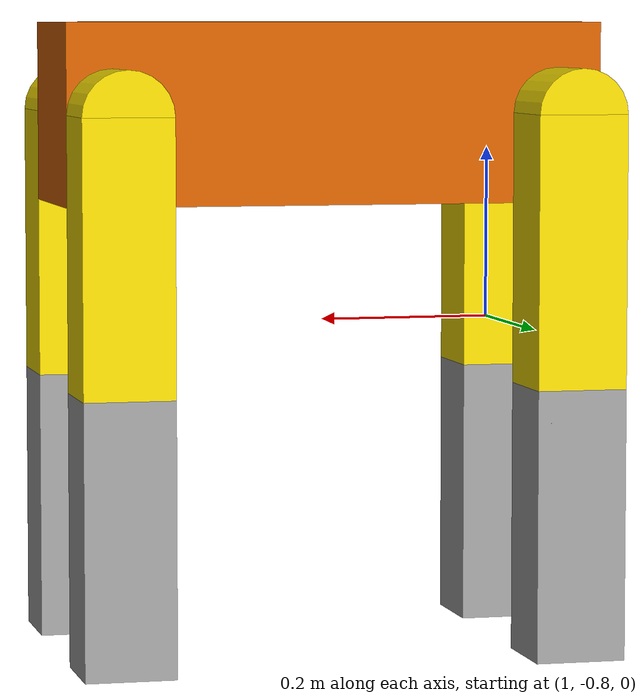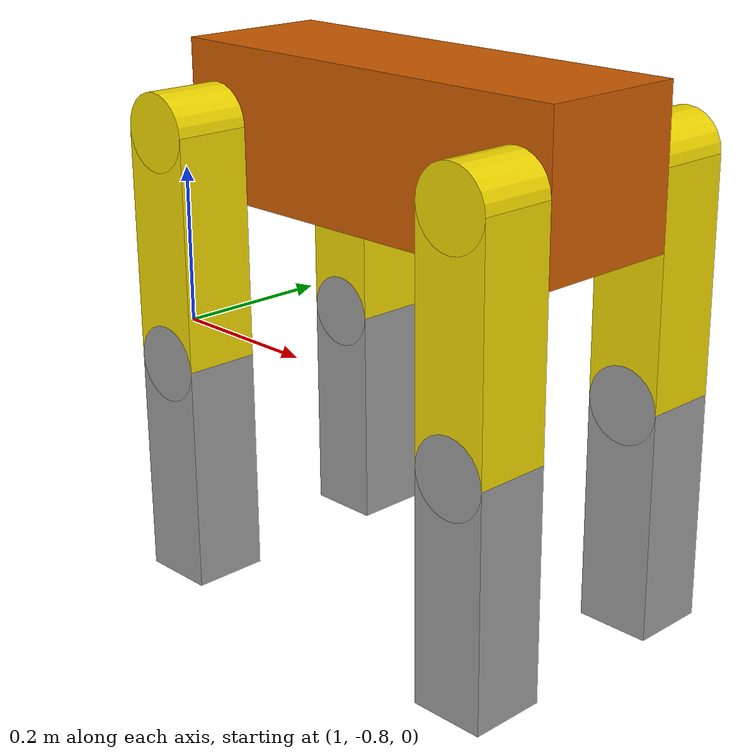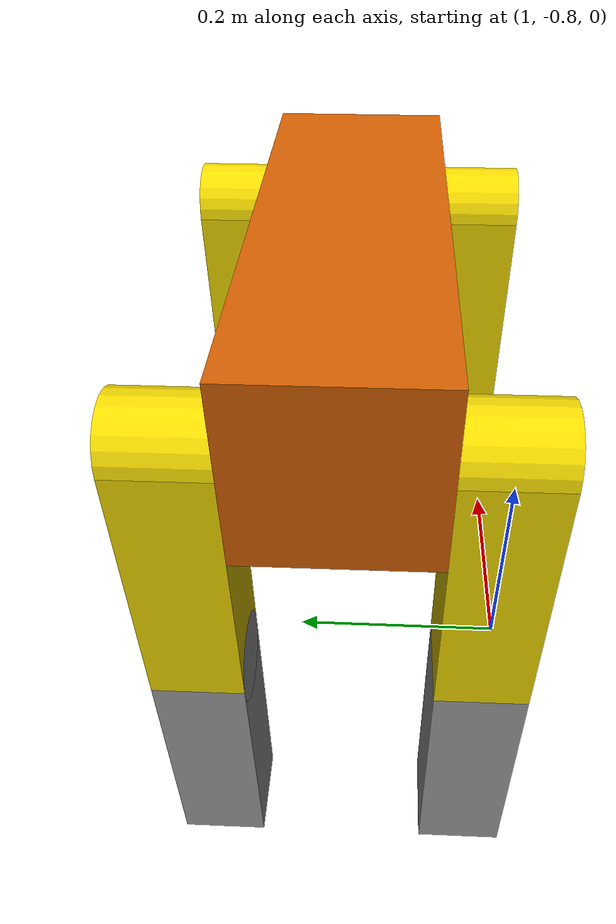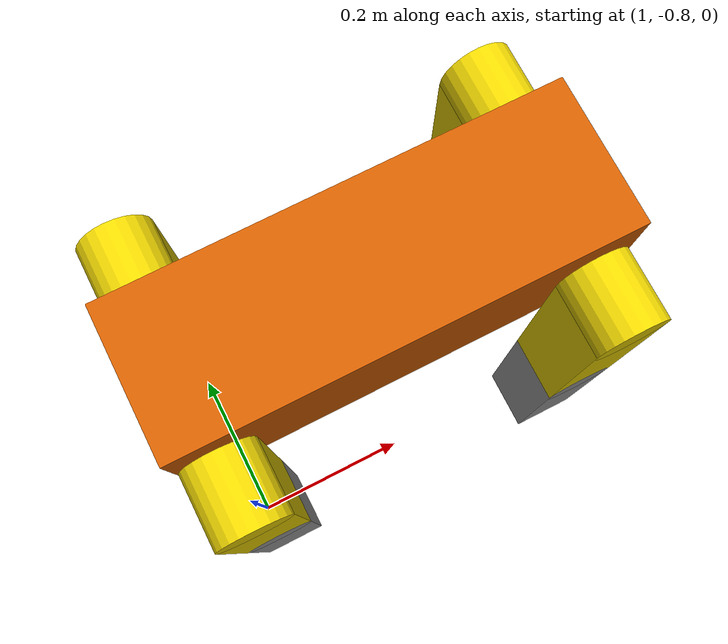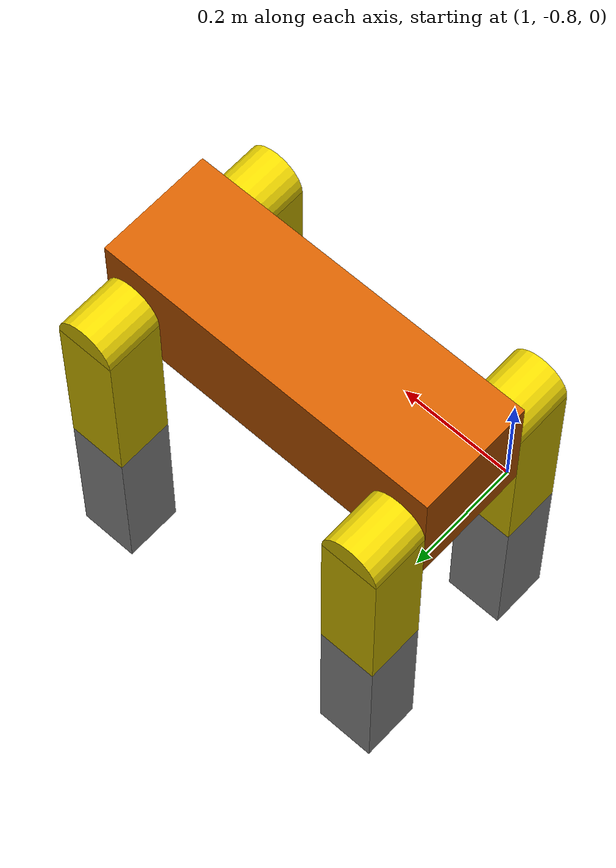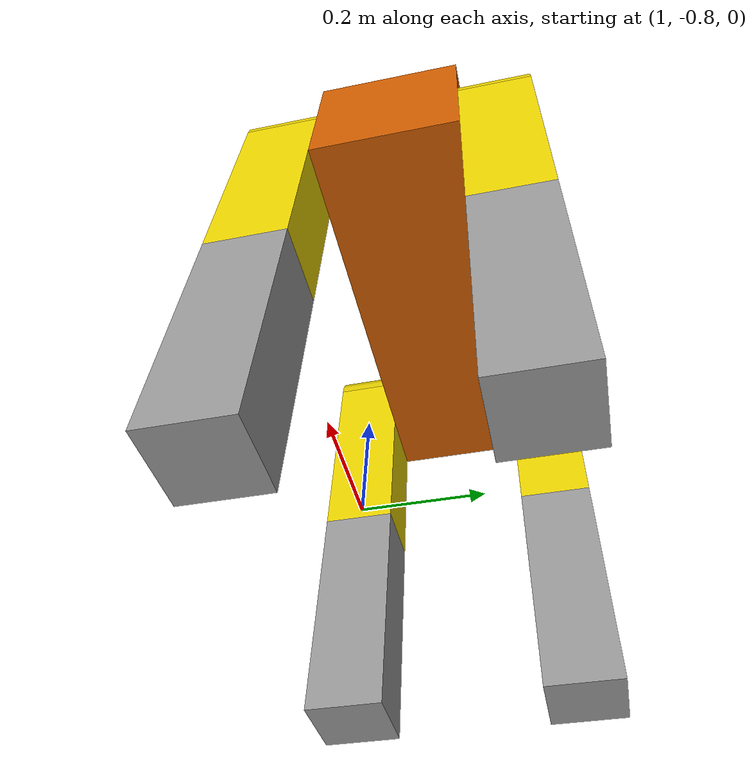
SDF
<?xml version='1.0'?>
<sdf version='1.7'>
  <model name='dog_robot'>
    <link name='link_0'>
      <inertial>
        <mass>28.2</mass>
        <inertia>
          <ixx>0.188</ixx>
          <ixy>0</ixy>
          <ixz>0</ixz>
          <iyy>0.94</iyy>
          <iyz>0</iyz>
          <izz>0.94</izz>
        </inertia>
        <pose>0 0 0 0 -0 0</pose>
      </inertial>
      <pose>1.24337 -0.641078 0.247843 0 -0 0</pose>
      <gravity>1</gravity>
      <self_collide>0</self_collide>
      <kinematic>0</kinematic>
      <enable_wind>0</enable_wind>
      <visual name='visual'>
        <pose>0 0 0 0 -0 0</pose>
        <geometry>
          <box>
            <size>0.6 0.2 0.2</size>
          </box>
        </geometry>
        <material>
          <lighting>1</lighting>
          <script>
            <uri>file://media/materials/scripts/gazebo.material</uri>
            <name>Gazebo/Grey</name>
          </script>
          <shader type='pixel'>
            <normal_map>__default__</normal_map>
          </shader>
          <ambient>0.808 0.361 0 1</ambient>
          <diffuse>0.808 0.361 0 1</diffuse>
          <specular>0.808 0.361 0 1</specular>
          <emissive>0 0 0 1</emissive>
        </material>
        <transparency>0</transparency>
        <cast_shadows>1</cast_shadows>
      </visual>
      <collision name='collision'>
        <laser_retro>0</laser_retro>
        <max_contacts>10</max_contacts>
        <pose>0 0 0 0 -0 0</pose>
        <geometry>
          <box>
            <size>0.6 0.2 0.2</size>
          </box>
        </geometry>
        <surface>
          <friction>
            <ode>
              <mu>1</mu>
              <mu2>1</mu2>
              <fdir1>0 0 0</fdir1>
              <slip1>0</slip1>
              <slip2>0</slip2>
            </ode>
            <torsional>
              <coefficient>1</coefficient>
              <patch_radius>0</patch_radius>
              <surface_radius>0</surface_radius>
              <use_patch_radius>1</use_patch_radius>
              <ode>
                <slip>0</slip>
              </ode>
            </torsional>
          </friction>
          <bounce>
            <restitution_coefficient>0</restitution_coefficient>
            <threshold>1e+06</threshold>
          </bounce>
          <contact>
            <collide_without_contact>0</collide_without_contact>
            <collide_without_contact_bitmask>1</collide_without_contact_bitmask>
            <collide_bitmask>1</collide_bitmask>
            <ode>
              <soft_cfm>0</soft_cfm>
              <soft_erp>0.2</soft_erp>
              <kp>1e+13</kp>
              <kd>1</kd>
              <max_vel>0.01</max_vel>
              <min_depth>0</min_depth>
            </ode>
            <bullet>
              <split_impulse>1</split_impulse>
              <split_impulse_penetration_threshold>-0.01</split_impulse_penetration_threshold>
              <soft_cfm>0</soft_cfm>
              <soft_erp>0.2</soft_erp>
              <kp>1e+13</kp>
              <kd>1</kd>
            </bullet>
          </contact>
        </surface>
      </collision>
    </link>
    <link name='link_1'>
      <inertial>
        <mass>0.922843</mass>
        <inertia>
          <ixx>0.00134581</ixx>
          <ixy>0</ixy>
          <ixz>0</ixz>
          <iyy>0.00134581</iyy>
          <iyz>0</iyz>
          <izz>0.00115355</izz>
        </inertia>
        <pose>0 0 0 0 -0 0</pose>
      </inertial>
      <pose>1.49337 -0.791078 0.247843 1.5707 -0 0</pose>
      <gravity>1</gravity>
      <self_collide>0</self_collide>
      <kinematic>0</kinematic>
      <enable_wind>0</enable_wind>
      <visual name='visual'>
        <pose>0 0 0 0 -0 0</pose>
        <geometry>
          <cylinder>
            <radius>0.05</radius>
            <length>0.1</length>
          </cylinder>
        </geometry>
        <material>
          <lighting>1</lighting>
          <script>
            <uri>file://media/materials/scripts/gazebo.material</uri>
            <name>Gazebo/Grey</name>
          </script>
          <shader type='pixel'>
            <normal_map>__default__</normal_map>
          </shader>
          <ambient>0.929 0.831 0 1</ambient>
          <diffuse>0.929 0.831 0 1</diffuse>
          <specular>0.929 0.831 0 1</specular>
          <emissive>0 0 0 1</emissive>
        </material>
        <transparency>0</transparency>
        <cast_shadows>1</cast_shadows>
      </visual>
      <collision name='collision'>
        <laser_retro>0</laser_retro>
        <max_contacts>10</max_contacts>
        <pose>0 0 0 0 -0 0</pose>
        <geometry>
          <cylinder>
            <radius>0.05</radius>
            <length>0.1</length>
          </cylinder>
        </geometry>
        <surface>
          <friction>
            <ode>
              <mu>1</mu>
              <mu2>1</mu2>
              <fdir1>0 0 0</fdir1>
              <slip1>0</slip1>
              <slip2>0</slip2>
            </ode>
            <torsional>
              <coefficient>1</coefficient>
              <patch_radius>0</patch_radius>
              <surface_radius>0</surface_radius>
              <use_patch_radius>1</use_patch_radius>
              <ode>
                <slip>0</slip>
              </ode>
            </torsional>
          </friction>
          <bounce>
            <restitution_coefficient>0</restitution_coefficient>
            <threshold>1e+06</threshold>
          </bounce>
          <contact>
            <collide_without_contact>0</collide_without_contact>
            <collide_without_contact_bitmask>1</collide_without_contact_bitmask>
            <collide_bitmask>1</collide_bitmask>
            <ode>
              <soft_cfm>0</soft_cfm>
              <soft_erp>0.2</soft_erp>
              <kp>1e+13</kp>
              <kd>1</kd>
              <max_vel>0.01</max_vel>
              <min_depth>0</min_depth>
            </ode>
            <bullet>
              <split_impulse>1</split_impulse>
              <split_impulse_penetration_threshold>-0.01</split_impulse_penetration_threshold>
              <soft_cfm>0</soft_cfm>
              <soft_erp>0.2</soft_erp>
              <kp>1e+13</kp>
              <kd>1</kd>
            </bullet>
          </contact>
        </surface>
      </collision>
    </link>
    <link name='link_1_clone'>
      <inertial>
        <mass>0.922843</mass>
        <inertia>
          <ixx>0.00134581</ixx>
          <ixy>0</ixy>
          <ixz>0</ixz>
          <iyy>0.00134581</iyy>
          <iyz>0</iyz>
          <izz>0.00115355</izz>
        </inertia>
        <pose>0 0 0 0 -0 0</pose>
      </inertial>
      <pose>0.993372 -0.491078 0.247843 1.5707 -0 0</pose>
      <gravity>1</gravity>
      <self_collide>0</self_collide>
      <kinematic>0</kinematic>
      <enable_wind>0</enable_wind>
      <visual name='visual'>
        <pose>0 0 0 0 -0 0</pose>
        <geometry>
          <cylinder>
            <radius>0.05</radius>
            <length>0.1</length>
          </cylinder>
        </geometry>
        <material>
          <lighting>1</lighting>
          <script>
            <uri>file://media/materials/scripts/gazebo.material</uri>
            <name>Gazebo/Grey</name>
          </script>
          <shader type='pixel'>
            <normal_map>__default__</normal_map>
          </shader>
          <ambient>0.929 0.831 0 1</ambient>
          <diffuse>0.929 0.831 0 1</diffuse>
          <specular>0.929 0.831 0 1</specular>
          <emissive>0 0 0 1</emissive>
        </material>
        <transparency>0</transparency>
        <cast_shadows>1</cast_shadows>
      </visual>
      <collision name='collision'>
        <laser_retro>0</laser_retro>
        <max_contacts>10</max_contacts>
        <pose>0 0 0 0 -0 0</pose>
        <geometry>
          <cylinder>
            <radius>0.05</radius>
            <length>0.1</length>
          </cylinder>
        </geometry>
        <surface>
          <friction>
            <ode>
              <mu>1</mu>
              <mu2>1</mu2>
              <fdir1>0 0 0</fdir1>
              <slip1>0</slip1>
              <slip2>0</slip2>
            </ode>
            <torsional>
              <coefficient>1</coefficient>
              <patch_radius>0</patch_radius>
              <surface_radius>0</surface_radius>
              <use_patch_radius>1</use_patch_radius>
              <ode>
                <slip>0</slip>
              </ode>
            </torsional>
          </friction>
          <bounce>
            <restitution_coefficient>0</restitution_coefficient>
            <threshold>1e+06</threshold>
          </bounce>
          <contact>
            <collide_without_contact>0</collide_without_contact>
            <collide_without_contact_bitmask>1</collide_without_contact_bitmask>
            <collide_bitmask>1</collide_bitmask>
            <ode>
              <soft_cfm>0</soft_cfm>
              <soft_erp>0.2</soft_erp>
              <kp>1e+13</kp>
              <kd>1</kd>
              <max_vel>0.01</max_vel>
              <min_depth>0</min_depth>
            </ode>
            <bullet>
              <split_impulse>1</split_impulse>
              <split_impulse_penetration_threshold>-0.01</split_impulse_penetration_threshold>
              <soft_cfm>0</soft_cfm>
              <soft_erp>0.2</soft_erp>
              <kp>1e+13</kp>
              <kd>1</kd>
            </bullet>
          </contact>
        </surface>
      </collision>
    </link>
    <link name='link_1_clone_0'>
      <inertial>
        <mass>0.922843</mass>
        <inertia>
          <ixx>0.00134581</ixx>
          <ixy>0</ixy>
          <ixz>0</ixz>
          <iyy>0.00134581</iyy>
          <iyz>0</iyz>
          <izz>0.00115355</izz>
        </inertia>
        <pose>0 0 0 0 -0 0</pose>
      </inertial>
      <pose>0.993372 -0.791078 0.247843 1.5707 -0 0</pose>
      <gravity>1</gravity>
      <self_collide>0</self_collide>
      <kinematic>0</kinematic>
      <enable_wind>0</enable_wind>
      <visual name='visual'>
        <pose>0 0 0 0 -0 0</pose>
        <geometry>
          <cylinder>
            <radius>0.05</radius>
            <length>0.1</length>
          </cylinder>
        </geometry>
        <material>
          <lighting>1</lighting>
          <script>
            <uri>file://media/materials/scripts/gazebo.material</uri>
            <name>Gazebo/Grey</name>
          </script>
          <shader type='pixel'>
            <normal_map>__default__</normal_map>
          </shader>
          <ambient>0.929 0.831 0 1</ambient>
          <diffuse>0.929 0.831 0 1</diffuse>
          <specular>0.929 0.831 0 1</specular>
          <emissive>0 0 0 1</emissive>
        </material>
        <transparency>0</transparency>
        <cast_shadows>1</cast_shadows>
      </visual>
      <collision name='collision'>
        <laser_retro>0</laser_retro>
        <max_contacts>10</max_contacts>
        <pose>0 0 0 0 -0 0</pose>
        <geometry>
          <cylinder>
            <radius>0.05</radius>
            <length>0.1</length>
          </cylinder>
        </geometry>
        <surface>
          <friction>
            <ode>
              <mu>1</mu>
              <mu2>1</mu2>
              <fdir1>0 0 0</fdir1>
              <slip1>0</slip1>
              <slip2>0</slip2>
            </ode>
            <torsional>
              <coefficient>1</coefficient>
              <patch_radius>0</patch_radius>
              <surface_radius>0</surface_radius>
              <use_patch_radius>1</use_patch_radius>
              <ode>
                <slip>0</slip>
              </ode>
            </torsional>
          </friction>
          <bounce>
            <restitution_coefficient>0</restitution_coefficient>
            <threshold>1e+06</threshold>
          </bounce>
          <contact>
            <collide_without_contact>0</collide_without_contact>
            <collide_without_contact_bitmask>1</collide_without_contact_bitmask>
            <collide_bitmask>1</collide_bitmask>
            <ode>
              <soft_cfm>0</soft_cfm>
              <soft_erp>0.2</soft_erp>
              <kp>1e+13</kp>
              <kd>1</kd>
              <max_vel>0.01</max_vel>
              <min_depth>0</min_depth>
            </ode>
            <bullet>
              <split_impulse>1</split_impulse>
              <split_impulse_penetration_threshold>-0.01</split_impulse_penetration_threshold>
              <soft_cfm>0</soft_cfm>
              <soft_erp>0.2</soft_erp>
              <kp>1e+13</kp>
              <kd>1</kd>
            </bullet>
          </contact>
        </surface>
      </collision>
    </link>
    <link name='link_1_clone_1'>
      <inertial>
        <mass>0.922843</mass>
        <inertia>
          <ixx>0.00134581</ixx>
          <ixy>0</ixy>
          <ixz>0</ixz>
          <iyy>0.00134581</iyy>
          <iyz>0</iyz>
          <izz>0.00115355</izz>
        </inertia>
        <pose>0 0 0 0 -0 0</pose>
      </inertial>
      <pose>1.49337 -0.491078 0.247843 1.5707 -0 0</pose>
      <gravity>1</gravity>
      <self_collide>0</self_collide>
      <kinematic>0</kinematic>
      <enable_wind>0</enable_wind>
      <visual name='visual'>
        <pose>0 0 0 0 -0 0</pose>
        <geometry>
          <cylinder>
            <radius>0.05</radius>
            <length>0.1</length>
          </cylinder>
        </geometry>
        <material>
          <lighting>1</lighting>
          <script>
            <uri>file://media/materials/scripts/gazebo.material</uri>
            <name>Gazebo/Grey</name>
          </script>
          <shader type='pixel'>
            <normal_map>__default__</normal_map>
          </shader>
          <ambient>0.929 0.831 0 1</ambient>
          <diffuse>0.929 0.831 0 1</diffuse>
          <specular>0.929 0.831 0 1</specular>
          <emissive>0 0 0 1</emissive>
        </material>
        <transparency>0</transparency>
        <cast_shadows>1</cast_shadows>
      </visual>
      <collision name='collision'>
        <laser_retro>0</laser_retro>
        <max_contacts>10</max_contacts>
        <pose>0 0 0 0 -0 0</pose>
        <geometry>
          <cylinder>
            <radius>0.05</radius>
            <length>0.1</length>
          </cylinder>
        </geometry>
        <surface>
          <friction>
            <ode>
              <mu>1</mu>
              <mu2>1</mu2>
              <fdir1>0 0 0</fdir1>
              <slip1>0</slip1>
              <slip2>0</slip2>
            </ode>
            <torsional>
              <coefficient>1</coefficient>
              <patch_radius>0</patch_radius>
              <surface_radius>0</surface_radius>
              <use_patch_radius>1</use_patch_radius>
              <ode>
                <slip>0</slip>
              </ode>
            </torsional>
          </friction>
          <bounce>
            <restitution_coefficient>0</restitution_coefficient>
            <threshold>1e+06</threshold>
          </bounce>
          <contact>
            <collide_without_contact>0</collide_without_contact>
            <collide_without_contact_bitmask>1</collide_without_contact_bitmask>
            <collide_bitmask>1</collide_bitmask>
            <ode>
              <soft_cfm>0</soft_cfm>
              <soft_erp>0.2</soft_erp>
              <kp>1e+13</kp>
              <kd>1</kd>
              <max_vel>0.01</max_vel>
              <min_depth>0</min_depth>
            </ode>
            <bullet>
              <split_impulse>1</split_impulse>
              <split_impulse_penetration_threshold>-0.01</split_impulse_penetration_threshold>
              <soft_cfm>0</soft_cfm>
              <soft_erp>0.2</soft_erp>
              <kp>1e+13</kp>
              <kd>1</kd>
            </bullet>
          </contact>
        </surface>
      </collision>
    </link>
    <link name='link_2'>
      <inertial>
        <mass>3.525</mass>
        <inertia>
          <ixx>0.029375</ixx>
          <ixy>0</ixy>
          <ixz>0</ixz>
          <iyy>0.005875</iyy>
          <iyz>0</iyz>
          <izz>0.029375</izz>
        </inertia>
        <pose>0 0 0 0 -0 0</pose>
      </inertial>
      <pose>1.49337 -0.791092 0.097844 1.5707 -0 0</pose>
      <gravity>1</gravity>
      <self_collide>0</self_collide>
      <kinematic>0</kinematic>
      <enable_wind>0</enable_wind>
      <visual name='visual'>
        <pose>0 0 0 0 -0 0</pose>
        <geometry>
          <box>
            <size>0.1 0.3 0.1</size>
          </box>
        </geometry>
        <material>
          <lighting>1</lighting>
          <script>
            <uri>file://media/materials/scripts/gazebo.material</uri>
            <name>Gazebo/Grey</name>
          </script>
          <shader type='pixel'>
            <normal_map>__default__</normal_map>
          </shader>
          <ambient>0.929 0.831 0 1</ambient>
          <diffuse>0.929 0.831 0 1</diffuse>
          <specular>0.929 0.831 0 1</specular>
          <emissive>0 0 0 1</emissive>
        </material>
        <transparency>0</transparency>
        <cast_shadows>1</cast_shadows>
      </visual>
      <collision name='collision'>
        <laser_retro>0</laser_retro>
        <max_contacts>10</max_contacts>
        <pose>0 0 0 0 -0 0</pose>
        <geometry>
          <box>
            <size>0.1 0.3 0.1</size>
          </box>
        </geometry>
        <surface>
          <friction>
            <ode>
              <mu>1</mu>
              <mu2>1</mu2>
              <fdir1>0 0 0</fdir1>
              <slip1>0</slip1>
              <slip2>0</slip2>
            </ode>
            <torsional>
              <coefficient>1</coefficient>
              <patch_radius>0</patch_radius>
              <surface_radius>0</surface_radius>
              <use_patch_radius>1</use_patch_radius>
              <ode>
                <slip>0</slip>
              </ode>
            </torsional>
          </friction>
          <bounce>
            <restitution_coefficient>0</restitution_coefficient>
            <threshold>1e+06</threshold>
          </bounce>
          <contact>
            <collide_without_contact>0</collide_without_contact>
            <collide_without_contact_bitmask>1</collide_without_contact_bitmask>
            <collide_bitmask>1</collide_bitmask>
            <ode>
              <soft_cfm>0</soft_cfm>
              <soft_erp>0.2</soft_erp>
              <kp>1e+13</kp>
              <kd>1</kd>
              <max_vel>0.01</max_vel>
              <min_depth>0</min_depth>
            </ode>
            <bullet>
              <split_impulse>1</split_impulse>
              <split_impulse_penetration_threshold>-0.01</split_impulse_penetration_threshold>
              <soft_cfm>0</soft_cfm>
              <soft_erp>0.2</soft_erp>
              <kp>1e+13</kp>
              <kd>1</kd>
            </bullet>
          </contact>
        </surface>
      </collision>
    </link>
    <link name='link_2_clone'>
      <inertial>
        <mass>3.525</mass>
        <inertia>
          <ixx>0.029375</ixx>
          <ixy>0</ixy>
          <ixz>0</ixz>
          <iyy>0.005875</iyy>
          <iyz>0</iyz>
          <izz>0.029375</izz>
        </inertia>
        <pose>0 0 0 0 -0 0</pose>
      </inertial>
      <pose>0.993372 -0.491092 0.097844 1.5707 -0 0</pose>
      <gravity>1</gravity>
      <self_collide>0</self_collide>
      <kinematic>0</kinematic>
      <enable_wind>0</enable_wind>
      <visual name='visual'>
        <pose>0 0 0 0 -0 0</pose>
        <geometry>
          <box>
            <size>0.1 0.3 0.1</size>
          </box>
        </geometry>
        <material>
          <lighting>1</lighting>
          <script>
            <uri>file://media/materials/scripts/gazebo.material</uri>
            <name>Gazebo/Grey</name>
          </script>
          <shader type='pixel'>
            <normal_map>__default__</normal_map>
          </shader>
          <ambient>0.929 0.831 0 1</ambient>
          <diffuse>0.929 0.831 0 1</diffuse>
          <specular>0.929 0.831 0 1</specular>
          <emissive>0 0 0 1</emissive>
        </material>
        <transparency>0</transparency>
        <cast_shadows>1</cast_shadows>
      </visual>
      <collision name='collision'>
        <laser_retro>0</laser_retro>
        <max_contacts>10</max_contacts>
        <pose>0 0 0 0 -0 0</pose>
        <geometry>
          <box>
            <size>0.1 0.3 0.1</size>
          </box>
        </geometry>
        <surface>
          <friction>
            <ode>
              <mu>1</mu>
              <mu2>1</mu2>
              <fdir1>0 0 0</fdir1>
              <slip1>0</slip1>
              <slip2>0</slip2>
            </ode>
            <torsional>
              <coefficient>1</coefficient>
              <patch_radius>0</patch_radius>
              <surface_radius>0</surface_radius>
              <use_patch_radius>1</use_patch_radius>
              <ode>
                <slip>0</slip>
              </ode>
            </torsional>
          </friction>
          <bounce>
            <restitution_coefficient>0</restitution_coefficient>
            <threshold>1e+06</threshold>
          </bounce>
          <contact>
            <collide_without_contact>0</collide_without_contact>
            <collide_without_contact_bitmask>1</collide_without_contact_bitmask>
            <collide_bitmask>1</collide_bitmask>
            <ode>
              <soft_cfm>0</soft_cfm>
              <soft_erp>0.2</soft_erp>
              <kp>1e+13</kp>
              <kd>1</kd>
              <max_vel>0.01</max_vel>
              <min_depth>0</min_depth>
            </ode>
            <bullet>
              <split_impulse>1</split_impulse>
              <split_impulse_penetration_threshold>-0.01</split_impulse_penetration_threshold>
              <soft_cfm>0</soft_cfm>
              <soft_erp>0.2</soft_erp>
              <kp>1e+13</kp>
              <kd>1</kd>
            </bullet>
          </contact>
        </surface>
      </collision>
    </link>
    <link name='link_2_clone_0'>
      <inertial>
        <mass>3.525</mass>
        <inertia>
          <ixx>0.029375</ixx>
          <ixy>0</ixy>
          <ixz>0</ixz>
          <iyy>0.005875</iyy>
          <iyz>0</iyz>
          <izz>0.029375</izz>
        </inertia>
        <pose>0 0 0 0 -0 0</pose>
      </inertial>
      <pose>1.49337 -0.491092 0.097844 1.5707 -0 0</pose>
      <gravity>1</gravity>
      <self_collide>0</self_collide>
      <kinematic>0</kinematic>
      <enable_wind>0</enable_wind>
      <visual name='visual'>
        <pose>0 0 0 0 -0 0</pose>
        <geometry>
          <box>
            <size>0.1 0.3 0.1</size>
          </box>
        </geometry>
        <material>
          <lighting>1</lighting>
          <script>
            <uri>file://media/materials/scripts/gazebo.material</uri>
            <name>Gazebo/Grey</name>
          </script>
          <shader type='pixel'>
            <normal_map>__default__</normal_map>
          </shader>
          <ambient>0.929 0.831 0 1</ambient>
          <diffuse>0.929 0.831 0 1</diffuse>
          <specular>0.929 0.831 0 1</specular>
          <emissive>0 0 0 1</emissive>
        </material>
        <transparency>0</transparency>
        <cast_shadows>1</cast_shadows>
      </visual>
      <collision name='collision'>
        <laser_retro>0</laser_retro>
        <max_contacts>10</max_contacts>
        <pose>0 0 0 0 -0 0</pose>
        <geometry>
          <box>
            <size>0.1 0.3 0.1</size>
          </box>
        </geometry>
        <surface>
          <friction>
            <ode>
              <mu>1</mu>
              <mu2>1</mu2>
              <fdir1>0 0 0</fdir1>
              <slip1>0</slip1>
              <slip2>0</slip2>
            </ode>
            <torsional>
              <coefficient>1</coefficient>
              <patch_radius>0</patch_radius>
              <surface_radius>0</surface_radius>
              <use_patch_radius>1</use_patch_radius>
              <ode>
                <slip>0</slip>
              </ode>
            </torsional>
          </friction>
          <bounce>
            <restitution_coefficient>0</restitution_coefficient>
            <threshold>1e+06</threshold>
          </bounce>
          <contact>
            <collide_without_contact>0</collide_without_contact>
            <collide_without_contact_bitmask>1</collide_without_contact_bitmask>
            <collide_bitmask>1</collide_bitmask>
            <ode>
              <soft_cfm>0</soft_cfm>
              <soft_erp>0.2</soft_erp>
              <kp>1e+13</kp>
              <kd>1</kd>
              <max_vel>0.01</max_vel>
              <min_depth>0</min_depth>
            </ode>
            <bullet>
              <split_impulse>1</split_impulse>
              <split_impulse_penetration_threshold>-0.01</split_impulse_penetration_threshold>
              <soft_cfm>0</soft_cfm>
              <soft_erp>0.2</soft_erp>
              <kp>1e+13</kp>
              <kd>1</kd>
            </bullet>
          </contact>
        </surface>
      </collision>
    </link>
    <link name='link_2_clone_1'>
      <inertial>
        <mass>3.525</mass>
        <inertia>
          <ixx>0.029375</ixx>
          <ixy>0</ixy>
          <ixz>0</ixz>
          <iyy>0.005875</iyy>
          <iyz>0</iyz>
          <izz>0.029375</izz>
        </inertia>
        <pose>0 0 0 0 -0 0</pose>
      </inertial>
      <pose>0.993372 -0.791092 0.097844 1.5707 -0 0</pose>
      <gravity>1</gravity>
      <self_collide>0</self_collide>
      <kinematic>0</kinematic>
      <enable_wind>0</enable_wind>
      <visual name='visual'>
        <pose>0 0 0 0 -0 0</pose>
        <geometry>
          <box>
            <size>0.1 0.3 0.1</size>
          </box>
        </geometry>
        <material>
          <lighting>1</lighting>
          <script>
            <uri>file://media/materials/scripts/gazebo.material</uri>
            <name>Gazebo/Grey</name>
          </script>
          <shader type='pixel'>
            <normal_map>__default__</normal_map>
          </shader>
          <ambient>0.929 0.831 0 1</ambient>
          <diffuse>0.929 0.831 0 1</diffuse>
          <specular>0.929 0.831 0 1</specular>
          <emissive>0 0 0 1</emissive>
        </material>
        <transparency>0</transparency>
        <cast_shadows>1</cast_shadows>
      </visual>
      <collision name='collision'>
        <laser_retro>0</laser_retro>
        <max_contacts>10</max_contacts>
        <pose>0 0 0 0 -0 0</pose>
        <geometry>
          <box>
            <size>0.1 0.3 0.1</size>
          </box>
        </geometry>
        <surface>
          <friction>
            <ode>
              <mu>1</mu>
              <mu2>1</mu2>
              <fdir1>0 0 0</fdir1>
              <slip1>0</slip1>
              <slip2>0</slip2>
            </ode>
            <torsional>
              <coefficient>1</coefficient>
              <patch_radius>0</patch_radius>
              <surface_radius>0</surface_radius>
              <use_patch_radius>1</use_patch_radius>
              <ode>
                <slip>0</slip>
              </ode>
            </torsional>
          </friction>
          <bounce>
            <restitution_coefficient>0</restitution_coefficient>
            <threshold>1e+06</threshold>
          </bounce>
          <contact>
            <collide_without_contact>0</collide_without_contact>
            <collide_without_contact_bitmask>1</collide_without_contact_bitmask>
            <collide_bitmask>1</collide_bitmask>
            <ode>
              <soft_cfm>0</soft_cfm>
              <soft_erp>0.2</soft_erp>
              <kp>1e+13</kp>
              <kd>1</kd>
              <max_vel>0.01</max_vel>
              <min_depth>0</min_depth>
            </ode>
            <bullet>
              <split_impulse>1</split_impulse>
              <split_impulse_penetration_threshold>-0.01</split_impulse_penetration_threshold>
              <soft_cfm>0</soft_cfm>
              <soft_erp>0.2</soft_erp>
              <kp>1e+13</kp>
              <kd>1</kd>
            </bullet>
          </contact>
        </surface>
      </collision>
    </link>
    <link name='link_2_clone_2'>
      <inertial>
        <mass>3.525</mass>
        <inertia>
          <ixx>0.029375</ixx>
          <ixy>0</ixy>
          <ixz>0</ixz>
          <iyy>0.005875</iyy>
          <iyz>0</iyz>
          <izz>0.029375</izz>
        </inertia>
        <pose>0 0 0 0 -0 0</pose>
      </inertial>
      <pose>1.49337 -0.791121 -0.202156 1.5707 -0 0</pose>
      <gravity>1</gravity>
      <self_collide>0</self_collide>
      <kinematic>0</kinematic>
      <enable_wind>0</enable_wind>
      <visual name='visual'>
        <pose>0 0 0 0 -0 0</pose>
        <geometry>
          <box>
            <size>0.1 0.3 0.1</size>
          </box>
        </geometry>
        <material>
          <lighting>1</lighting>
          <script>
            <uri>file://media/materials/scripts/gazebo.material</uri>
            <name>Gazebo/Grey</name>
          </script>
          <shader type='pixel'>
            <normal_map>__default__</normal_map>
          </shader>
          <ambient>0.3 0.3 0.3 1</ambient>
          <diffuse>0.7 0.7 0.7 1</diffuse>
          <specular>0.01 0.01 0.01 1</specular>
          <emissive>0 0 0 1</emissive>
        </material>
        <transparency>0</transparency>
        <cast_shadows>1</cast_shadows>
      </visual>
      <collision name='collision'>
        <laser_retro>0</laser_retro>
        <max_contacts>10</max_contacts>
        <pose>0 0 0 0 -0 0</pose>
        <geometry>
          <box>
            <size>0.1 0.3 0.1</size>
          </box>
        </geometry>
        <surface>
          <friction>
            <ode>
              <mu>1</mu>
              <mu2>1</mu2>
              <fdir1>0 0 0</fdir1>
              <slip1>0</slip1>
              <slip2>0</slip2>
            </ode>
            <torsional>
              <coefficient>1</coefficient>
              <patch_radius>0</patch_radius>
              <surface_radius>0</surface_radius>
              <use_patch_radius>1</use_patch_radius>
              <ode>
                <slip>0</slip>
              </ode>
            </torsional>
          </friction>
          <bounce>
            <restitution_coefficient>0</restitution_coefficient>
            <threshold>1e+06</threshold>
          </bounce>
          <contact>
            <collide_without_contact>0</collide_without_contact>
            <collide_without_contact_bitmask>1</collide_without_contact_bitmask>
            <collide_bitmask>1</collide_bitmask>
            <ode>
              <soft_cfm>0</soft_cfm>
              <soft_erp>0.2</soft_erp>
              <kp>1e+13</kp>
              <kd>1</kd>
              <max_vel>0.01</max_vel>
              <min_depth>0</min_depth>
            </ode>
            <bullet>
              <split_impulse>1</split_impulse>
              <split_impulse_penetration_threshold>-0.01</split_impulse_penetration_threshold>
              <soft_cfm>0</soft_cfm>
              <soft_erp>0.2</soft_erp>
              <kp>1e+13</kp>
              <kd>1</kd>
            </bullet>
          </contact>
        </surface>
      </collision>
    </link>
    <link name='link_2_clone_3'>
      <inertial>
        <mass>3.525</mass>
        <inertia>
          <ixx>0.029375</ixx>
          <ixy>0</ixy>
          <ixz>0</ixz>
          <iyy>0.005875</iyy>
          <iyz>0</iyz>
          <izz>0.029375</izz>
        </inertia>
        <pose>0 0 0 0 -0 0</pose>
      </inertial>
      <pose>0.993372 -0.491121 -0.202156 1.5707 -0 0</pose>
      <gravity>1</gravity>
      <self_collide>0</self_collide>
      <kinematic>0</kinematic>
      <enable_wind>0</enable_wind>
      <visual name='visual'>
        <pose>0 0 0 0 -0 0</pose>
        <geometry>
          <box>
            <size>0.1 0.3 0.1</size>
          </box>
        </geometry>
        <material>
          <lighting>1</lighting>
          <script>
            <uri>file://media/materials/scripts/gazebo.material</uri>
            <name>Gazebo/Grey</name>
          </script>
          <shader type='pixel'>
            <normal_map>__default__</normal_map>
          </shader>
          <ambient>0.3 0.3 0.3 1</ambient>
          <diffuse>0.7 0.7 0.7 1</diffuse>
          <specular>0.01 0.01 0.01 1</specular>
          <emissive>0 0 0 1</emissive>
        </material>
        <transparency>0</transparency>
        <cast_shadows>1</cast_shadows>
      </visual>
      <collision name='collision'>
        <laser_retro>0</laser_retro>
        <max_contacts>10</max_contacts>
        <pose>0 0 0 0 -0 0</pose>
        <geometry>
          <box>
            <size>0.1 0.3 0.1</size>
          </box>
        </geometry>
        <surface>
          <friction>
            <ode>
              <mu>1</mu>
              <mu2>1</mu2>
              <fdir1>0 0 0</fdir1>
              <slip1>0</slip1>
              <slip2>0</slip2>
            </ode>
            <torsional>
              <coefficient>1</coefficient>
              <patch_radius>0</patch_radius>
              <surface_radius>0</surface_radius>
              <use_patch_radius>1</use_patch_radius>
              <ode>
                <slip>0</slip>
              </ode>
            </torsional>
          </friction>
          <bounce>
            <restitution_coefficient>0</restitution_coefficient>
            <threshold>1e+06</threshold>
          </bounce>
          <contact>
            <collide_without_contact>0</collide_without_contact>
            <collide_without_contact_bitmask>1</collide_without_contact_bitmask>
            <collide_bitmask>1</collide_bitmask>
            <ode>
              <soft_cfm>0</soft_cfm>
              <soft_erp>0.2</soft_erp>
              <kp>1e+13</kp>
              <kd>1</kd>
              <max_vel>0.01</max_vel>
              <min_depth>0</min_depth>
            </ode>
            <bullet>
              <split_impulse>1</split_impulse>
              <split_impulse_penetration_threshold>-0.01</split_impulse_penetration_threshold>
              <soft_cfm>0</soft_cfm>
              <soft_erp>0.2</soft_erp>
              <kp>1e+13</kp>
              <kd>1</kd>
            </bullet>
          </contact>
        </surface>
      </collision>
    </link>
    <link name='link_2_clone_4'>
      <inertial>
        <mass>3.525</mass>
        <inertia>
          <ixx>0.029375</ixx>
          <ixy>0</ixy>
          <ixz>0</ixz>
          <iyy>0.005875</iyy>
          <iyz>0</iyz>
          <izz>0.029375</izz>
        </inertia>
        <pose>0 0 0 0 -0 0</pose>
      </inertial>
      <pose>1.49337 -0.491121 -0.202156 1.5707 -0 0</pose>
      <gravity>1</gravity>
      <self_collide>0</self_collide>
      <kinematic>0</kinematic>
      <enable_wind>0</enable_wind>
      <visual name='visual'>
        <pose>0 0 0 0 -0 0</pose>
        <geometry>
          <box>
            <size>0.1 0.3 0.1</size>
          </box>
        </geometry>
        <material>
          <lighting>1</lighting>
          <script>
            <uri>file://media/materials/scripts/gazebo.material</uri>
            <name>Gazebo/Grey</name>
          </script>
          <shader type='pixel'>
            <normal_map>__default__</normal_map>
          </shader>
          <ambient>0.3 0.3 0.3 1</ambient>
          <diffuse>0.7 0.7 0.7 1</diffuse>
          <specular>0.01 0.01 0.01 1</specular>
          <emissive>0 0 0 1</emissive>
        </material>
        <transparency>0</transparency>
        <cast_shadows>1</cast_shadows>
      </visual>
      <collision name='collision'>
        <laser_retro>0</laser_retro>
        <max_contacts>10</max_contacts>
        <pose>0 0 0 0 -0 0</pose>
        <geometry>
          <box>
            <size>0.1 0.3 0.1</size>
          </box>
        </geometry>
        <surface>
          <friction>
            <ode>
              <mu>1</mu>
              <mu2>1</mu2>
              <fdir1>0 0 0</fdir1>
              <slip1>0</slip1>
              <slip2>0</slip2>
            </ode>
            <torsional>
              <coefficient>1</coefficient>
              <patch_radius>0</patch_radius>
              <surface_radius>0</surface_radius>
              <use_patch_radius>1</use_patch_radius>
              <ode>
                <slip>0</slip>
              </ode>
            </torsional>
          </friction>
          <bounce>
            <restitution_coefficient>0</restitution_coefficient>
            <threshold>1e+06</threshold>
          </bounce>
          <contact>
            <collide_without_contact>0</collide_without_contact>
            <collide_without_contact_bitmask>1</collide_without_contact_bitmask>
            <collide_bitmask>1</collide_bitmask>
            <ode>
              <soft_cfm>0</soft_cfm>
              <soft_erp>0.2</soft_erp>
              <kp>1e+13</kp>
              <kd>1</kd>
              <max_vel>0.01</max_vel>
              <min_depth>0</min_depth>
            </ode>
            <bullet>
              <split_impulse>1</split_impulse>
              <split_impulse_penetration_threshold>-0.01</split_impulse_penetration_threshold>
              <soft_cfm>0</soft_cfm>
              <soft_erp>0.2</soft_erp>
              <kp>1e+13</kp>
              <kd>1</kd>
            </bullet>
          </contact>
        </surface>
      </collision>
    </link>
    <link name='link_2_clone_5'>
      <inertial>
        <mass>3.525</mass>
        <inertia>
          <ixx>0.029375</ixx>
          <ixy>0</ixy>
          <ixz>0</ixz>
          <iyy>0.005875</iyy>
          <iyz>0</iyz>
          <izz>0.029375</izz>
        </inertia>
        <pose>0 0 0 0 -0 0</pose>
      </inertial>
      <pose>0.993372 -0.791121 -0.202156 1.5707 -0 0</pose>
      <gravity>1</gravity>
      <self_collide>0</self_collide>
      <kinematic>0</kinematic>
      <enable_wind>0</enable_wind>
      <visual name='visual'>
        <pose>0 0 0 0 -0 0</pose>
        <geometry>
          <box>
            <size>0.1 0.3 0.1</size>
          </box>
        </geometry>
        <material>
          <lighting>1</lighting>
          <script>
            <uri>file://media/materials/scripts/gazebo.material</uri>
            <name>Gazebo/Grey</name>
          </script>
          <shader type='pixel'>
            <normal_map>__default__</normal_map>
          </shader>
          <ambient>0.3 0.3 0.3 1</ambient>
          <diffuse>0.7 0.7 0.7 1</diffuse>
          <specular>0.01 0.01 0.01 1</specular>
          <emissive>0 0 0 1</emissive>
        </material>
        <transparency>0</transparency>
        <cast_shadows>1</cast_shadows>
      </visual>
      <collision name='collision'>
        <laser_retro>0</laser_retro>
        <max_contacts>10</max_contacts>
        <pose>0 0 0 0 -0 0</pose>
        <geometry>
          <box>
            <size>0.1 0.3 0.1</size>
          </box>
        </geometry>
        <surface>
          <friction>
            <ode>
              <mu>1</mu>
              <mu2>1</mu2>
              <fdir1>0 0 0</fdir1>
              <slip1>0</slip1>
              <slip2>0</slip2>
            </ode>
            <torsional>
              <coefficient>1</coefficient>
              <patch_radius>0</patch_radius>
              <surface_radius>0</surface_radius>
              <use_patch_radius>1</use_patch_radius>
              <ode>
                <slip>0</slip>
              </ode>
            </torsional>
          </friction>
          <bounce>
            <restitution_coefficient>0</restitution_coefficient>
            <threshold>1e+06</threshold>
          </bounce>
          <contact>
            <collide_without_contact>0</collide_without_contact>
            <collide_without_contact_bitmask>1</collide_without_contact_bitmask>
            <collide_bitmask>1</collide_bitmask>
            <ode>
              <soft_cfm>0</soft_cfm>
              <soft_erp>0.2</soft_erp>
              <kp>1e+13</kp>
              <kd>1</kd>
              <max_vel>0.01</max_vel>
              <min_depth>0</min_depth>
            </ode>
            <bullet>
              <split_impulse>1</split_impulse>
              <split_impulse_penetration_threshold>-0.01</split_impulse_penetration_threshold>
              <soft_cfm>0</soft_cfm>
              <soft_erp>0.2</soft_erp>
              <kp>1e+13</kp>
              <kd>1</kd>
            </bullet>
          </contact>
        </surface>
      </collision>
    </link>
    <link name='link_3'>
      <inertial>
        <mass>0.922843</mass>
        <inertia>
          <ixx>0.00134581</ixx>
          <ixy>0</ixy>
          <ixz>0</ixz>
          <iyy>0.00134581</iyy>
          <iyz>0</iyz>
          <izz>0.00115355</izz>
        </inertia>
        <pose>0 0 0 0 -0 0</pose>
      </inertial>
      <pose>1.49337 -0.791107 -0.052156 1.5707 -0 0</pose>
      <gravity>1</gravity>
      <self_collide>0</self_collide>
      <kinematic>0</kinematic>
      <enable_wind>0</enable_wind>
      <visual name='visual'>
        <pose>0 0 0 0 -0 0</pose>
        <geometry>
          <cylinder>
            <radius>0.05</radius>
            <length>0.1</length>
          </cylinder>
        </geometry>
        <material>
          <lighting>1</lighting>
          <script>
            <uri>file://media/materials/scripts/gazebo.material</uri>
            <name>Gazebo/Grey</name>
          </script>
          <shader type='pixel'>
            <normal_map>__default__</normal_map>
          </shader>
          <ambient>0.3 0.3 0.3 1</ambient>
          <diffuse>0.7 0.7 0.7 1</diffuse>
          <specular>0.01 0.01 0.01 1</specular>
          <emissive>0 0 0 1</emissive>
        </material>
        <transparency>0</transparency>
        <cast_shadows>1</cast_shadows>
      </visual>
      <collision name='collision'>
        <laser_retro>0</laser_retro>
        <max_contacts>10</max_contacts>
        <pose>0 0 0 0 -0 0</pose>
        <geometry>
          <cylinder>
            <radius>0.05</radius>
            <length>0.1</length>
          </cylinder>
        </geometry>
        <surface>
          <friction>
            <ode>
              <mu>1</mu>
              <mu2>1</mu2>
              <fdir1>0 0 0</fdir1>
              <slip1>0</slip1>
              <slip2>0</slip2>
            </ode>
            <torsional>
              <coefficient>1</coefficient>
              <patch_radius>0</patch_radius>
              <surface_radius>0</surface_radius>
              <use_patch_radius>1</use_patch_radius>
              <ode>
                <slip>0</slip>
              </ode>
            </torsional>
          </friction>
          <bounce>
            <restitution_coefficient>0</restitution_coefficient>
            <threshold>1e+06</threshold>
          </bounce>
          <contact>
            <collide_without_contact>0</collide_without_contact>
            <collide_without_contact_bitmask>1</collide_without_contact_bitmask>
            <collide_bitmask>1</collide_bitmask>
            <ode>
              <soft_cfm>0</soft_cfm>
              <soft_erp>0.2</soft_erp>
              <kp>1e+13</kp>
              <kd>1</kd>
              <max_vel>0.01</max_vel>
              <min_depth>0</min_depth>
            </ode>
            <bullet>
              <split_impulse>1</split_impulse>
              <split_impulse_penetration_threshold>-0.01</split_impulse_penetration_threshold>
              <soft_cfm>0</soft_cfm>
              <soft_erp>0.2</soft_erp>
              <kp>1e+13</kp>
              <kd>1</kd>
            </bullet>
          </contact>
        </surface>
      </collision>
    </link>
    <link name='link_3_clone'>
      <inertial>
        <mass>0.922843</mass>
        <inertia>
          <ixx>0.00134581</ixx>
          <ixy>0</ixy>
          <ixz>0</ixz>
          <iyy>0.00134581</iyy>
          <iyz>0</iyz>
          <izz>0.00115355</izz>
        </inertia>
        <pose>0 0 0 0 -0 0</pose>
      </inertial>
      <pose>0.993372 -0.491107 -0.052156 1.5707 -0 0</pose>
      <gravity>1</gravity>
      <self_collide>0</self_collide>
      <kinematic>0</kinematic>
      <enable_wind>0</enable_wind>
      <visual name='visual'>
        <pose>0 0 0 0 -0 0</pose>
        <geometry>
          <cylinder>
            <radius>0.05</radius>
            <length>0.1</length>
          </cylinder>
        </geometry>
        <material>
          <lighting>1</lighting>
          <script>
            <uri>file://media/materials/scripts/gazebo.material</uri>
            <name>Gazebo/Grey</name>
          </script>
          <shader type='pixel'>
            <normal_map>__default__</normal_map>
          </shader>
          <ambient>0.3 0.3 0.3 1</ambient>
          <diffuse>0.7 0.7 0.7 1</diffuse>
          <specular>0.01 0.01 0.01 1</specular>
          <emissive>0 0 0 1</emissive>
        </material>
        <transparency>0</transparency>
        <cast_shadows>1</cast_shadows>
      </visual>
      <collision name='collision'>
        <laser_retro>0</laser_retro>
        <max_contacts>10</max_contacts>
        <pose>0 0 0 0 -0 0</pose>
        <geometry>
          <cylinder>
            <radius>0.05</radius>
            <length>0.1</length>
          </cylinder>
        </geometry>
        <surface>
          <friction>
            <ode>
              <mu>1</mu>
              <mu2>1</mu2>
              <fdir1>0 0 0</fdir1>
              <slip1>0</slip1>
              <slip2>0</slip2>
            </ode>
            <torsional>
              <coefficient>1</coefficient>
              <patch_radius>0</patch_radius>
              <surface_radius>0</surface_radius>
              <use_patch_radius>1</use_patch_radius>
              <ode>
                <slip>0</slip>
              </ode>
            </torsional>
          </friction>
          <bounce>
            <restitution_coefficient>0</restitution_coefficient>
            <threshold>1e+06</threshold>
          </bounce>
          <contact>
            <collide_without_contact>0</collide_without_contact>
            <collide_without_contact_bitmask>1</collide_without_contact_bitmask>
            <collide_bitmask>1</collide_bitmask>
            <ode>
              <soft_cfm>0</soft_cfm>
              <soft_erp>0.2</soft_erp>
              <kp>1e+13</kp>
              <kd>1</kd>
              <max_vel>0.01</max_vel>
              <min_depth>0</min_depth>
            </ode>
            <bullet>
              <split_impulse>1</split_impulse>
              <split_impulse_penetration_threshold>-0.01</split_impulse_penetration_threshold>
              <soft_cfm>0</soft_cfm>
              <soft_erp>0.2</soft_erp>
              <kp>1e+13</kp>
              <kd>1</kd>
            </bullet>
          </contact>
        </surface>
      </collision>
    </link>
    <link name='link_3_clone_0'>
      <inertial>
        <mass>0.922843</mass>
        <inertia>
          <ixx>0.00134581</ixx>
          <ixy>0</ixy>
          <ixz>0</ixz>
          <iyy>0.00134581</iyy>
          <iyz>0</iyz>
          <izz>0.00115355</izz>
        </inertia>
        <pose>0 0 0 0 -0 0</pose>
      </inertial>
      <pose>1.49337 -0.491107 -0.052156 1.5707 -0 0</pose>
      <gravity>1</gravity>
      <self_collide>0</self_collide>
      <kinematic>0</kinematic>
      <enable_wind>0</enable_wind>
      <visual name='visual'>
        <pose>0 0 0 0 -0 0</pose>
        <geometry>
          <cylinder>
            <radius>0.05</radius>
            <length>0.1</length>
          </cylinder>
        </geometry>
        <material>
          <lighting>1</lighting>
          <script>
            <uri>file://media/materials/scripts/gazebo.material</uri>
            <name>Gazebo/Grey</name>
          </script>
          <shader type='pixel'>
            <normal_map>__default__</normal_map>
          </shader>
          <ambient>0.3 0.3 0.3 1</ambient>
          <diffuse>0.7 0.7 0.7 1</diffuse>
          <specular>0.01 0.01 0.01 1</specular>
          <emissive>0 0 0 1</emissive>
        </material>
        <transparency>0</transparency>
        <cast_shadows>1</cast_shadows>
      </visual>
      <collision name='collision'>
        <laser_retro>0</laser_retro>
        <max_contacts>10</max_contacts>
        <pose>0 0 0 0 -0 0</pose>
        <geometry>
          <cylinder>
            <radius>0.05</radius>
            <length>0.1</length>
          </cylinder>
        </geometry>
        <surface>
          <friction>
            <ode>
              <mu>1</mu>
              <mu2>1</mu2>
              <fdir1>0 0 0</fdir1>
              <slip1>0</slip1>
              <slip2>0</slip2>
            </ode>
            <torsional>
              <coefficient>1</coefficient>
              <patch_radius>0</patch_radius>
              <surface_radius>0</surface_radius>
              <use_patch_radius>1</use_patch_radius>
              <ode>
                <slip>0</slip>
              </ode>
            </torsional>
          </friction>
          <bounce>
            <restitution_coefficient>0</restitution_coefficient>
            <threshold>1e+06</threshold>
          </bounce>
          <contact>
            <collide_without_contact>0</collide_without_contact>
            <collide_without_contact_bitmask>1</collide_without_contact_bitmask>
            <collide_bitmask>1</collide_bitmask>
            <ode>
              <soft_cfm>0</soft_cfm>
              <soft_erp>0.2</soft_erp>
              <kp>1e+13</kp>
              <kd>1</kd>
              <max_vel>0.01</max_vel>
              <min_depth>0</min_depth>
            </ode>
            <bullet>
              <split_impulse>1</split_impulse>
              <split_impulse_penetration_threshold>-0.01</split_impulse_penetration_threshold>
              <soft_cfm>0</soft_cfm>
              <soft_erp>0.2</soft_erp>
              <kp>1e+13</kp>
              <kd>1</kd>
            </bullet>
          </contact>
        </surface>
      </collision>
    </link>
    <link name='link_3_clone_1'>
      <inertial>
        <mass>0.922843</mass>
        <inertia>
          <ixx>0.00134581</ixx>
          <ixy>0</ixy>
          <ixz>0</ixz>
          <iyy>0.00134581</iyy>
          <iyz>0</iyz>
          <izz>0.00115355</izz>
        </inertia>
        <pose>0 0 0 0 -0 0</pose>
      </inertial>
      <pose>0.993372 -0.791107 -0.052156 1.5707 -0 0</pose>
      <gravity>1</gravity>
      <self_collide>0</self_collide>
      <kinematic>0</kinematic>
      <enable_wind>0</enable_wind>
      <visual name='visual'>
        <pose>0 0 0 0 -0 0</pose>
        <geometry>
          <cylinder>
            <radius>0.05</radius>
            <length>0.1</length>
          </cylinder>
        </geometry>
        <material>
          <lighting>1</lighting>
          <script>
            <uri>file://media/materials/scripts/gazebo.material</uri>
            <name>Gazebo/Grey</name>
          </script>
          <shader type='pixel'>
            <normal_map>__default__</normal_map>
          </shader>
          <ambient>0.3 0.3 0.3 1</ambient>
          <diffuse>0.7 0.7 0.7 1</diffuse>
          <specular>0.01 0.01 0.01 1</specular>
          <emissive>0 0 0 1</emissive>
        </material>
        <transparency>0</transparency>
        <cast_shadows>1</cast_shadows>
      </visual>
      <collision name='collision'>
        <laser_retro>0</laser_retro>
        <max_contacts>10</max_contacts>
        <pose>0 0 0 0 -0 0</pose>
        <geometry>
          <cylinder>
            <radius>0.05</radius>
            <length>0.1</length>
          </cylinder>
        </geometry>
        <surface>
          <friction>
            <ode>
              <mu>1</mu>
              <mu2>1</mu2>
              <fdir1>0 0 0</fdir1>
              <slip1>0</slip1>
              <slip2>0</slip2>
            </ode>
            <torsional>
              <coefficient>1</coefficient>
              <patch_radius>0</patch_radius>
              <surface_radius>0</surface_radius>
              <use_patch_radius>1</use_patch_radius>
              <ode>
                <slip>0</slip>
              </ode>
            </torsional>
          </friction>
          <bounce>
            <restitution_coefficient>0</restitution_coefficient>
            <threshold>1e+06</threshold>
          </bounce>
          <contact>
            <collide_without_contact>0</collide_without_contact>
            <collide_without_contact_bitmask>1</collide_without_contact_bitmask>
            <collide_bitmask>1</collide_bitmask>
            <ode>
              <soft_cfm>0</soft_cfm>
              <soft_erp>0.2</soft_erp>
              <kp>1e+13</kp>
              <kd>1</kd>
              <max_vel>0.01</max_vel>
              <min_depth>0</min_depth>
            </ode>
            <bullet>
              <split_impulse>1</split_impulse>
              <split_impulse_penetration_threshold>-0.01</split_impulse_penetration_threshold>
              <soft_cfm>0</soft_cfm>
              <soft_erp>0.2</soft_erp>
              <kp>1e+13</kp>
              <kd>1</kd>
            </bullet>
          </contact>
        </surface>
      </collision>
    </link>
    <joint name='link_0_JOINT_0' type='revolute'>
      <parent>link_0</parent>
      <child>link_1</child>
      <pose>0 0 0 0 -0 0</pose>
      <axis>
        <xyz>0 0 1</xyz>
        <limit>
          <lower>-1.79769e+308</lower>
          <upper>1.79769e+308</upper>
          <effort>-1</effort>
          <velocity>-1</velocity>
        </limit>
        <dynamics>
          <spring_reference>0</spring_reference>
          <spring_stiffness>0</spring_stiffness>
          <damping>0</damping>
          <friction>0</friction>
        </dynamics>
      </axis>
      <physics>
        <ode>
          <limit>
            <cfm>0</cfm>
            <erp>0.2</erp>
          </limit>
          <suspension>
            <cfm>0</cfm>
            <erp>0.2</erp>
          </suspension>
        </ode>
      </physics>
    </joint>
    <joint name='link_0_JOINT_1' type='revolute'>
      <parent>link_0</parent>
      <child>link_1_clone_1</child>
      <pose>0 0 0 0 -0 0</pose>
      <axis>
        <xyz>0 0 1</xyz>
        <limit>
          <lower>-1.79769e+308</lower>
          <upper>1.79769e+308</upper>
          <effort>-1</effort>
          <velocity>-1</velocity>
        </limit>
        <dynamics>
          <spring_reference>0</spring_reference>
          <spring_stiffness>0</spring_stiffness>
          <damping>0</damping>
          <friction>0</friction>
        </dynamics>
      </axis>
      <physics>
        <ode>
          <limit>
            <cfm>0</cfm>
            <erp>0.2</erp>
          </limit>
          <suspension>
            <cfm>0</cfm>
            <erp>0.2</erp>
          </suspension>
        </ode>
      </physics>
    </joint>
    <joint name='link_0_JOINT_2' type='revolute'>
      <parent>link_0</parent>
      <child>link_1_clone_0</child>
      <pose>0 0 0 0 -0 0</pose>
      <axis>
        <xyz>0 0 1</xyz>
        <limit>
          <lower>-1.79769e+308</lower>
          <upper>1.79769e+308</upper>
          <effort>-1</effort>
          <velocity>-1</velocity>
        </limit>
        <dynamics>
          <spring_reference>0</spring_reference>
          <spring_stiffness>0</spring_stiffness>
          <damping>0</damping>
          <friction>0</friction>
        </dynamics>
      </axis>
      <physics>
        <ode>
          <limit>
            <cfm>0</cfm>
            <erp>0.2</erp>
          </limit>
          <suspension>
            <cfm>0</cfm>
            <erp>0.2</erp>
          </suspension>
        </ode>
      </physics>
    </joint>
    <joint name='link_0_JOINT_3' type='revolute'>
      <parent>link_0</parent>
      <child>link_1_clone</child>
      <pose>0 0 0 0 -0 0</pose>
      <axis>
        <xyz>0 0 1</xyz>
        <limit>
          <lower>-1.79769e+308</lower>
          <upper>1.79769e+308</upper>
          <effort>-1</effort>
          <velocity>-1</velocity>
        </limit>
        <dynamics>
          <spring_reference>0</spring_reference>
          <spring_stiffness>0</spring_stiffness>
          <damping>0</damping>
          <friction>0</friction>
        </dynamics>
      </axis>
      <physics>
        <ode>
          <limit>
            <cfm>0</cfm>
            <erp>0.2</erp>
          </limit>
          <suspension>
            <cfm>0</cfm>
            <erp>0.2</erp>
          </suspension>
        </ode>
      </physics>
    </joint>
    <joint name='link_1_JOINT_4' type='fixed'>
      <parent>link_1</parent>
      <child>link_2</child>
      <pose>0 0 0 0 -0 0</pose>
      <physics>
        <ode>
          <limit>
            <cfm>0</cfm>
            <erp>0.2</erp>
          </limit>
          <suspension>
            <cfm>0</cfm>
            <erp>0.2</erp>
          </suspension>
        </ode>
      </physics>
    </joint>
    <joint name='link_1_clone_0_JOINT_6' type='fixed'>
      <parent>link_1_clone_0</parent>
      <child>link_2_clone_1</child>
      <pose>0 0 0 0 -0 0</pose>
      <physics>
        <ode>
          <limit>
            <cfm>0</cfm>
            <erp>0.2</erp>
          </limit>
          <suspension>
            <cfm>0</cfm>
            <erp>0.2</erp>
          </suspension>
        </ode>
      </physics>
    </joint>
    <joint name='link_1_clone_1_JOINT_7' type='fixed'>
      <parent>link_1_clone_1</parent>
      <child>link_2_clone_0</child>
      <pose>0 0 0 0 -0 0</pose>
      <physics>
        <ode>
          <limit>
            <cfm>0</cfm>
            <erp>0.2</erp>
          </limit>
          <suspension>
            <cfm>0</cfm>
            <erp>0.2</erp>
          </suspension>
        </ode>
      </physics>
    </joint>
    <joint name='link_1_clone_JOINT_5' type='fixed'>
      <parent>link_1_clone</parent>
      <child>link_2_clone</child>
      <pose>0 0 0 0 -0 0</pose>
      <physics>
        <ode>
          <limit>
            <cfm>0</cfm>
            <erp>0.2</erp>
          </limit>
          <suspension>
            <cfm>0</cfm>
            <erp>0.2</erp>
          </suspension>
        </ode>
      </physics>
    </joint>
    <joint name='link_2_JOINT_8' type='revolute'>
      <parent>link_2</parent>
      <child>link_3</child>
      <pose>0 0 0 0 -0 0</pose>
      <axis>
        <xyz>0 0 1</xyz>
        <limit>
          <lower>-1.79769e+308</lower>
          <upper>1.79769e+308</upper>
          <effort>-1</effort>
          <velocity>-1</velocity>
        </limit>
        <dynamics>
          <spring_reference>0</spring_reference>
          <spring_stiffness>0</spring_stiffness>
          <damping>0</damping>
          <friction>0</friction>
        </dynamics>
      </axis>
      <physics>
        <ode>
          <limit>
            <cfm>0</cfm>
            <erp>0.2</erp>
          </limit>
          <suspension>
            <cfm>0</cfm>
            <erp>0.2</erp>
          </suspension>
        </ode>
      </physics>
    </joint>
    <joint name='link_2_clone_0_JOINT_10' type='revolute'>
      <parent>link_2_clone_0</parent>
      <child>link_3_clone_0</child>
      <pose>0 0 0 0 -0 0</pose>
      <axis>
        <xyz>0 0 1</xyz>
        <limit>
          <lower>-1.79769e+308</lower>
          <upper>1.79769e+308</upper>
          <effort>-1</effort>
          <velocity>-1</velocity>
        </limit>
        <dynamics>
          <spring_reference>0</spring_reference>
          <spring_stiffness>0</spring_stiffness>
          <damping>0</damping>
          <friction>0</friction>
        </dynamics>
      </axis>
      <physics>
        <ode>
          <limit>
            <cfm>0</cfm>
            <erp>0.2</erp>
          </limit>
          <suspension>
            <cfm>0</cfm>
            <erp>0.2</erp>
          </suspension>
        </ode>
      </physics>
    </joint>
    <joint name='link_2_clone_1_JOINT_11' type='revolute'>
      <parent>link_2_clone_1</parent>
      <child>link_3_clone_1</child>
      <pose>0 0 0 0 -0 0</pose>
      <axis>
        <xyz>0 0 1</xyz>
        <limit>
          <lower>-1.79769e+308</lower>
          <upper>1.79769e+308</upper>
          <effort>-1</effort>
          <velocity>-1</velocity>
        </limit>
        <dynamics>
          <spring_reference>0</spring_reference>
          <spring_stiffness>0</spring_stiffness>
          <damping>0</damping>
          <friction>0</friction>
        </dynamics>
      </axis>
      <physics>
        <ode>
          <limit>
            <cfm>0</cfm>
            <erp>0.2</erp>
          </limit>
          <suspension>
            <cfm>0</cfm>
            <erp>0.2</erp>
          </suspension>
        </ode>
      </physics>
    </joint>
    <joint name='link_2_clone_JOINT_9' type='revolute'>
      <parent>link_2_clone</parent>
      <child>link_3_clone</child>
      <pose>0 0 0 0 -0 0</pose>
      <axis>
        <xyz>0 0 1</xyz>
        <limit>
          <lower>-1.79769e+308</lower>
          <upper>1.79769e+308</upper>
          <effort>-1</effort>
          <velocity>-1</velocity>
        </limit>
        <dynamics>
          <spring_reference>0</spring_reference>
          <spring_stiffness>0</spring_stiffness>
          <damping>0</damping>
          <friction>0</friction>
        </dynamics>
      </axis>
      <physics>
        <ode>
          <limit>
            <cfm>0</cfm>
            <erp>0.2</erp>
          </limit>
          <suspension>
            <cfm>0</cfm>
            <erp>0.2</erp>
          </suspension>
        </ode>
      </physics>
    </joint>
    <joint name='link_3_JOINT_12' type='fixed'>
      <parent>link_3</parent>
      <child>link_2_clone_2</child>
      <pose>0 0 0 0 -0 0</pose>
      <physics>
        <ode>
          <limit>
            <cfm>0</cfm>
            <erp>0.2</erp>
          </limit>
          <suspension>
            <cfm>0</cfm>
            <erp>0.2</erp>
          </suspension>
        </ode>
      </physics>
    </joint>
    <joint name='link_3_clone_0_JOINT_14' type='fixed'>
      <parent>link_3_clone_0</parent>
      <child>link_2_clone_4</child>
      <pose>0 0 0 0 -0 0</pose>
      <physics>
        <ode>
          <limit>
            <cfm>0</cfm>
            <erp>0.2</erp>
          </limit>
          <suspension>
            <cfm>0</cfm>
            <erp>0.2</erp>
          </suspension>
        </ode>
      </physics>
    </joint>
    <joint name='link_3_clone_1_JOINT_15' type='fixed'>
      <parent>link_3_clone_1</parent>
      <child>link_2_clone_5</child>
      <pose>0 0 0 0 -0 0</pose>
      <physics>
        <ode>
          <limit>
            <cfm>0</cfm>
            <erp>0.2</erp>
          </limit>
          <suspension>
            <cfm>0</cfm>
            <erp>0.2</erp>
          </suspension>
        </ode>
      </physics>
    </joint>
    <joint name='link_3_clone_JOINT_13' type='fixed'>
      <parent>link_3_clone</parent>
      <child>link_2_clone_3</child>
      <pose>0 0 0 0 -0 0</pose>
      <physics>
        <ode>
          <limit>
            <cfm>0</cfm>
            <erp>0.2</erp>
          </limit>
          <suspension>
            <cfm>0</cfm>
            <erp>0.2</erp>
          </suspension>
        </ode>
      </physics>
    </joint>
    <static>0</static>
    <allow_auto_disable>1</allow_auto_disable>
  </model>
</sdf>
